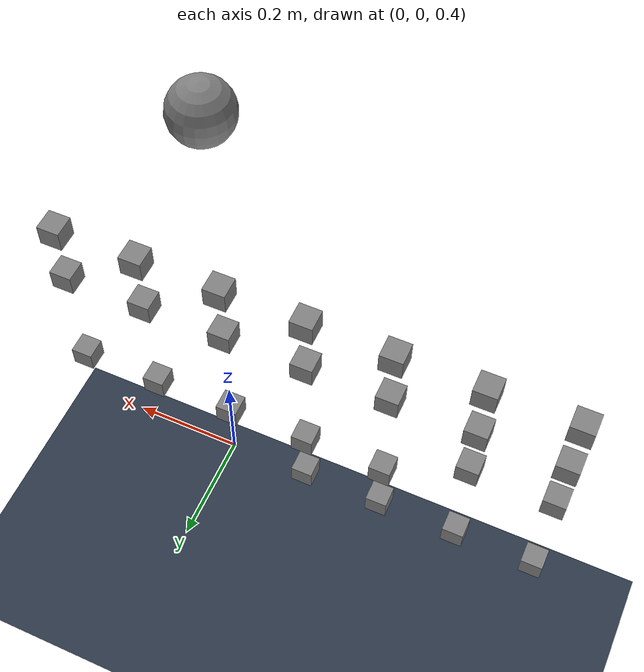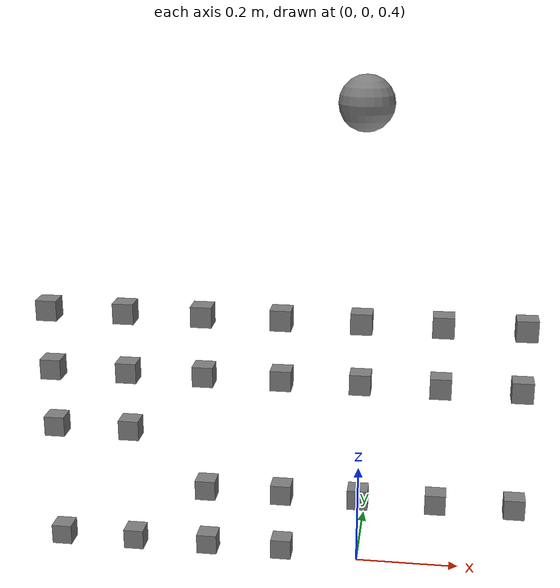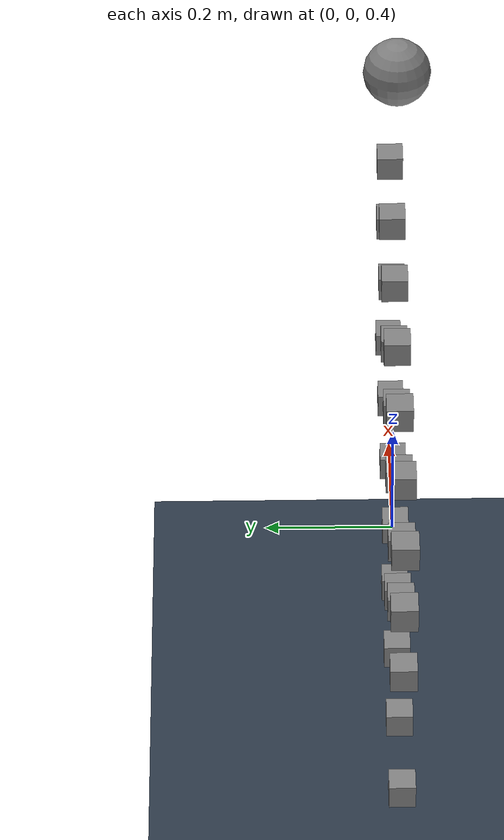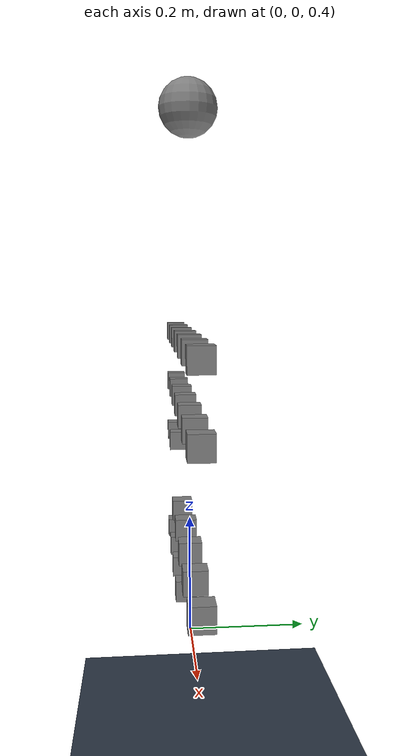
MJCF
<mujoco model="marble_plinko">
  <compiler angle="radian"/>
  <option timestep="0.002" integrator="Euler" iterations="200" tolerance="1e-8" gravity="0 0 -9.81" cone="pyramidal"/>
  <asset>
    <texture name="floor_grid" type="2d" builtin="checker" rgb1="0.12 0.15 0.20" rgb2="0.22 0.28 0.35" width="512" height="512"/>
    <material name="floor_material" texture="floor_grid" texrepeat="8 8" reflectance="0.1"/>
  </asset>
  <worldbody>
    <light directional="true" pos="0 -2 5" dir="0 0.3 -1" diffuse="0.9 0.9 0.9" specular="0.3 0.3 0.3"/>
    <geom name="floor" type="plane" size="5 5 0.1" pos="0 0 0" material="floor_material" contype="0" conaffinity="0"/>
    <geom name="peg0" type="box" size="0.02 0.02 0.02" pos="-0.6 0 0.9" condim="3"/>
    <geom name="peg1" type="box" size="0.02 0.02 0.02" pos="-0.45 0 0.9" condim="3"/>
    <geom name="peg2" type="box" size="0.02 0.02 0.02" pos="-0.3 0 0.9" condim="3"/>
    <geom name="peg3" type="box" size="0.02 0.02 0.02" pos="-0.15 0 0.9" condim="3"/>
    <geom name="peg4" type="box" size="0.02 0.02 0.02" pos="0 0 0.9" condim="3"/>
    <geom name="peg5" type="box" size="0.02 0.02 0.02" pos="0.15 0 0.9" condim="3"/>
    <geom name="peg6" type="box" size="0.02 0.02 0.02" pos="0.3 0 0.9" condim="3"/>
    <geom name="peg7" type="box" size="0.02 0.02 0.02" pos="-0.6 0 0.78" condim="3"/>
    <geom name="peg8" type="box" size="0.02 0.02 0.02" pos="-0.45 0 0.78" condim="3"/>
    <geom name="peg9" type="box" size="0.02 0.02 0.02" pos="-0.3 0 0.78" condim="3"/>
    <geom name="peg10" type="box" size="0.02 0.02 0.02" pos="-0.15 0 0.78" condim="3"/>
    <geom name="peg11" type="box" size="0.02 0.02 0.02" pos="0 0 0.78" condim="3"/>
    <geom name="peg12" type="box" size="0.02 0.02 0.02" pos="0.15 0 0.78" condim="3"/>
    <geom name="peg13" type="box" size="0.02 0.02 0.02" pos="0.3 0 0.78" condim="3"/>
    <geom name="peg14" type="box" size="0.02 0.02 0.02" pos="-0.6 0 0.66" condim="3"/>
    <geom name="peg15" type="box" size="0.02 0.02 0.02" pos="-0.45 0 0.66" condim="3"/>
    <geom name="peg16" type="box" size="0.02 0.02 0.02" pos="-0.3 0 0.54" condim="1"/>
    <geom name="peg17" type="box" size="0.02 0.02 0.02" pos="-0.15 0 0.54" condim="1"/>
    <geom name="peg18" type="box" size="0.02 0.02 0.02" pos="0 0 0.54" condim="1"/>
    <geom name="peg19" type="box" size="0.02 0.02 0.02" pos="0.15 0 0.54" condim="1"/>
    <geom name="peg20" type="box" size="0.02 0.02 0.02" pos="0.3 0 0.54" condim="1"/>
    <geom name="peg21" type="box" size="0.02 0.02 0.02" pos="-0.6 0 0.42" condim="1"/>
    <geom name="peg22" type="box" size="0.02 0.02 0.02" pos="-0.45 0 0.42" condim="1"/>
    <geom name="peg23" type="box" size="0.02 0.02 0.02" pos="-0.3 0 0.42" condim="1"/>
    <geom name="peg24" type="box" size="0.02 0.02 0.02" pos="-0.15 0 0.42" condim="1"/>
    <body pos="0 0 1.3">
      <freejoint/>
      <geom name="ball" type="sphere" size="0.05" mass="0.2" condim="1"/>
    </body>
  </worldbody>
</mujoco>
